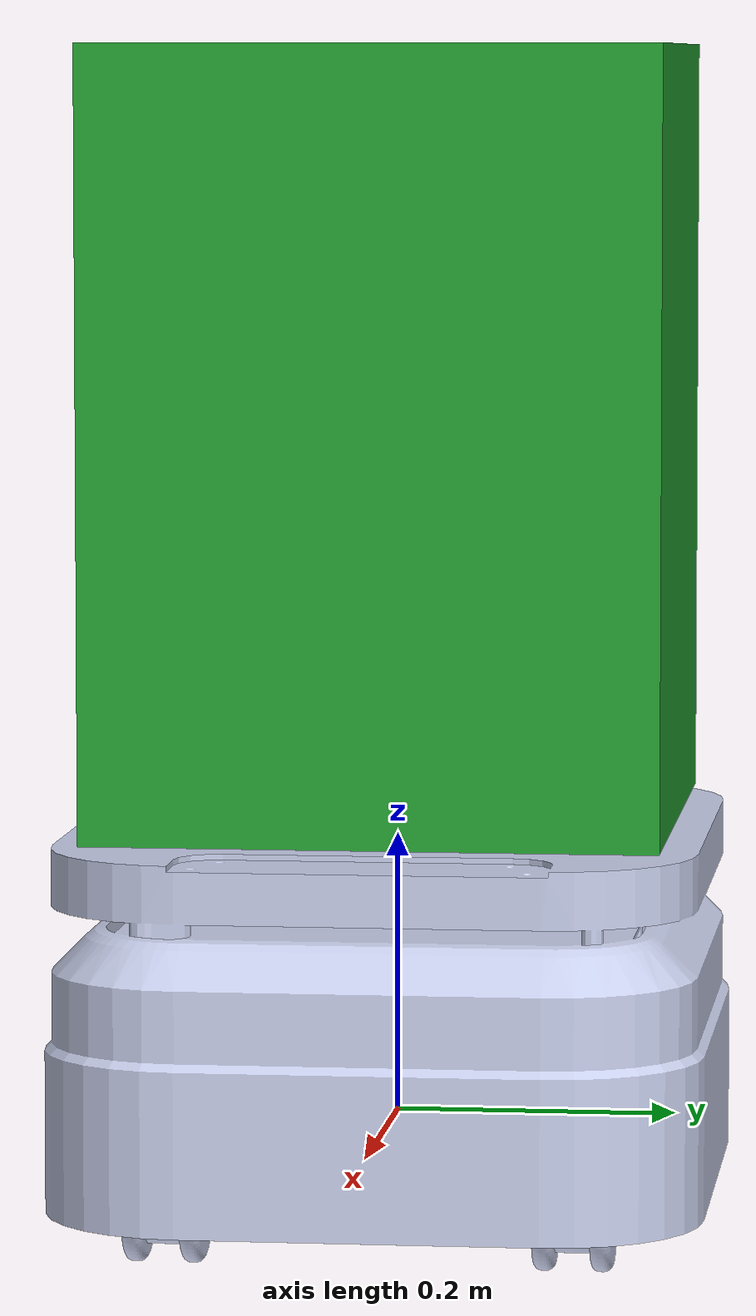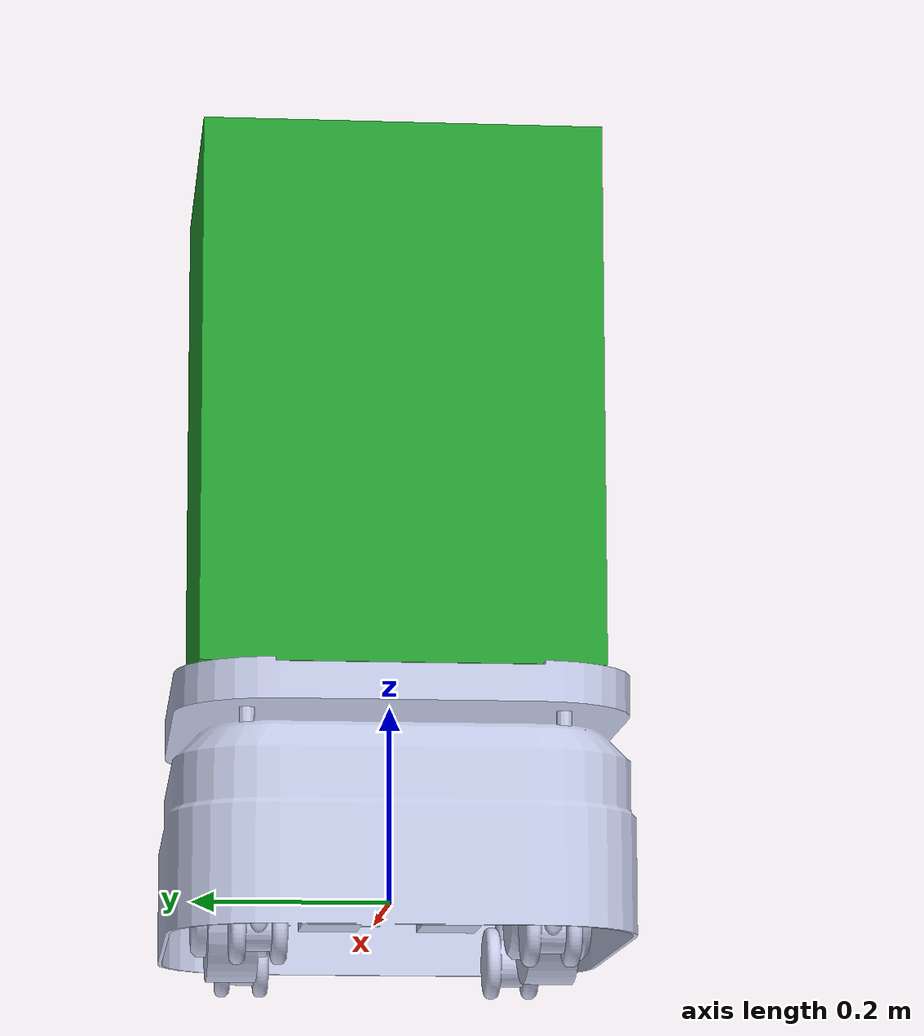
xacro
<?xml version="1.0"?>
<robot xmlns:xacro="http://ros.org/wiki/xacro" name="autoxing">
  <xacro:include filename="$(find autoxing)/urdf/autoxing_with_base.urdf" />

   <xacro:macro name="diff_controller_plugin_gazebo" params="prefix left_wheel_joint right_wheel_joint ">
    <gazebo>
      <plugin name="diff_drive_controller" filename="libgazebo_ros_diff_drive.so">
        <legacyMode>false</legacyMode>
        <alwaysOn>true</alwaysOn>
        <updateRate>1000.0</updateRate>
        <leftJoint>${left_wheel_joint}</leftJoint>
        <rightJoint>${right_wheel_joint}</rightJoint>
        <wheelSeparation>0.32</wheelSeparation>
        <wheelDiameter>0.16</wheelDiameter>
        <wheelTorque>10</wheelTorque>
        <publishTf>1</publishTf>
        <odometryFrame>map</odometryFrame>
        <commandTopic>mobile_base_controller/cmd_vel</commandTopic>
        <odometryTopic>mobile_base_controller/odom</odometryTopic>
        <robotBaseFrame>chassis</robotBaseFrame>
        <wheelAcceleration>2.0</wheelAcceleration>
        <publishWheelJointState>true</publishWheelJointState>
        <publishWheelTF>false</publishWheelTF>
        <odometrySource>odom</odometrySource>
        <rosDebugLevel>Debug</rosDebugLevel>
      </plugin>
    </gazebo>
  </xacro:macro>

    <gazebo reference="wheel_left">
      <mu1 value="200"/>
      <mu2 value="200"/>
      <kp value="10000000.0"/>
      <kd value="1.0"/>
      <minDepth>0.01</minDepth>
    </gazebo>

    <gazebo reference="wheel_right">
      <mu1 value="200"/>
      <mu2 value="200"/>
      <kp value="10000000.0"/>
      <kd value="1.0"/>
      <minDepth>0.01</minDepth>
    </gazebo>

  <xacro:macro name="p3d_base_controller" params="prefix">
    <gazebo>
      <plugin name="p3d_base_controller" filename="libgazebo_ros_p3d.so">
        <alwaysOn>true</alwaysOn>
        <updateRate>50.0</updateRate>
        <bodyName>chassis</bodyName>
        <topicName>base_pose_ground_truth</topicName>
        <gaussianNoise>0.01</gaussianNoise>
        <frameName>map</frameName>
        <xyzOffsets>0 0 0</xyzOffsets>
        <rpyOffsets>0 0 0</rpyOffsets>
      </plugin>
    </gazebo>
  </xacro:macro>
  <xacro:macro name="mir_wheel_transmission" params="prefix locationprefix">
    <transmission name="${prefix}${locationprefix}_wheel_trans">
      <type>transmission_interface/SimpleTransmission</type>
      <joint name="${prefix}${locationprefix}_wheel_joint">
        <hardwareInterface>hardware_interface/VelocityJointInterface</hardwareInterface>
      </joint>
      <actuator name="${prefix}${locationprefix}_wheel_motor">
        <hardwareInterface>hardware_interface/VelocityJointInterface</hardwareInterface>
        <mechanicalReduction>1</mechanicalReduction>
      </actuator>
    </transmission>
  </xacro:macro>

  <xacro:macro name="mir_wheel_transmissions" params="prefix">
    <xacro:mir_wheel_transmission prefix="${prefix}" locationprefix="left"/>
    <xacro:mir_wheel_transmission prefix="${prefix}" locationprefix="right"/>
  </xacro:macro>

  <xacro:macro name="controller_plugin_gazebo" params="robot_namespace">
    <gazebo>
      <plugin name="gazebo_ros_control" filename="libgazebo_ros_control.so">
        <xacro:unless value="${robot_namespace == ''}">
          <robotNamespace>${robot_namespace}</robotNamespace>
        </xacro:unless>
        <controlPeriod>0.001</controlPeriod>
        <legacyModeNS>false</legacyModeNS>
      </plugin>
    </gazebo>
  </xacro:macro>
</robot>

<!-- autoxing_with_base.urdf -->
<robot
  name="autoxing">
   <link
    name="Basefoot_link">

  </link>

  <link
    name="chassis">
    <inertial>
      <origin
        xyz="0.000149481705181087 -0.000120539934038988 0.152123091903942"
        rpy="0 0 0" />
      <mass
        value="40.8730395253421" />
      <inertia
        ixx="0.214418008302521"
        ixy="0.0"
        ixz="-0.0"
        iyy="0.258151038948936"
        iyz="0.0"
        izz="0.450008991346858" />
    </inertial>
    <visual>
      <origin
        xyz="0 0 0"
        rpy="0 0 0" />
      <geometry>
        <mesh
          filename="package://autoxing/meshes/base_link.STL" />
      </geometry>
      <material
        name="">
        <color
          rgba="0.792156862745098 0.819607843137255 0.933333333333333 1" />
      </material>
    </visual>
    <collision>
      <origin
        xyz="0 0 0"
        rpy="0 0 0" />
      <geometry>
        <mesh
          filename="package://autoxing/meshes/base_link.STL" />
      </geometry>
    </collision>
  </link>

  <joint
    name="base_link_it"
    type="fixed">
    <origin
      xyz="0 0 0"
      rpy="0 0 0" />
    <parent
      link="Basefoot_link" />
    <child
      link="chassis" />
    <axis
      xyz="0 0 0" />
  </joint>

  <link name="struct">
  	<visual>
  	<geometry>
  		<box size="0.4 0.4 0.549077"/>
  	</geometry>
  	<material name="green"/>
  	</visual>
  	 <collision>
      <origin
        xyz="0 0 0"
        rpy="0 0 0" />
      <geometry>
       <box size="0.4 0.4 0.549077"/>
      </geometry>
    </collision>
  </link>
  <joint name="struct_joint" type="fixed">
  	<origin
      xyz="0.00671416680612401 0.00186793926091428 0.488953 "
      rpy="0 0 0" />
  	<parent link="chassis"/>
  	<child link="struct"/>
  </joint>

  <link
    name="wheel_left">
    <inertial>
      <origin
        xyz="-1.38777878078145E-16 -7.97972798949331E-17 0.0399999999999999"
        rpy="0 0 0" />
      <mass
        value="1.28203160205244" />
      <inertia
        ixx="0.00231577757345468"
        ixy="0"
        ixz="0"
        iyy="0.00231577757345468"
        iyz="0"
        izz="0.00362433959821745" />
    </inertial>
    <visual>
      <origin
        xyz="0 0 0"
        rpy="0 0 0" />
      <geometry>
        <mesh
          filename="package://autoxing/meshes/wheel_left.STL " />
      </geometry>
      <material
        name="">
        <color
          rgba="0.792156862745098 0.819607843137255 0.933333333333333 1" />
      </material>
    </visual>
    <collision>
      <origin
        xyz="0 0 0"
        rpy="0 0 0" />
      <geometry>
	<cylinder radius="0.08" length="0.05"/>
      </geometry>
    </collision>
  </link>
  <joint
    name="wheel_left_joint"
    type="continuous">
    <origin
      xyz="0 0.120461283375568 0"
      rpy="-1.5707963267949 0 0" />
    <parent
      link="chassis" />
    <child
      link="wheel_left" />
    <axis
      xyz="0 0 1" />
  </joint>
  <link
    name="wheel_right">
    <inertial>
      <origin
        xyz="-1.38777878078145E-17 1.04083408558608E-17 0.0399999999999999"
        rpy="0 0 0" />
      <mass
        value="1.28203160205244" />
      <inertia
        ixx="0.00231577757345468"
        ixy="0"
        ixz="0"
        iyy="0.00231577757345468"
        iyz="0"
        izz="0.00362433959821745" />
    </inertial>
    <visual>
      <origin
        xyz="0 0 0"
        rpy="0 0 0" />
      <geometry>
        <mesh
          filename="package://autoxing/meshes/wheel_right.STL" />
      </geometry>
      <material
        name="">
        <color
          rgba="0.792156862745098 0.819607843137255 0.933333333333333 1" />
      </material>
    </visual>
    <collision>
      <origin
        xyz="0 0 0"
        rpy="0 0 0" />
      <geometry>

          <cylinder radius="0.08" length="0.05"/>
      </geometry>
    </collision>
  </link>
  <joint
    name="wheel_right_joint"
    type="continuous">
    <origin
      xyz="0 -0.120461283375569 0"
      rpy="1.5707963267949 0 0" />
    <parent
      link="chassis" />
    <child
      link="wheel_right" />
    <axis
      xyz="0 0 -1" />
  </joint>
  <link
    name="casterhub_front_left">
    <inertial>
      <origin
        xyz="0.00631384572851573 -0.00939402891827468 -7.51390670640402E-05"
        rpy="0 0 0" />
      <mass
        value="0.0507301916211751" />
      <inertia
        ixx="2.13076622334858E-05"
        ixy="-4.77213305526971E-12"
        ixz="-2.15459256741868E-07"
        iyy="2.12936580660824E-05"
        iyz="-3.18977689924232E-11"
        izz="9.21167172411273E-06" />
    </inertial>
    <visual>
      <origin
        xyz="0 0 0"
        rpy="0 0 0" />
      <geometry>
        <mesh
          filename="package://autoxing/meshes/casterhub_front_left.STL" />
      </geometry>
      <material
        name="">
        <color
          rgba="0.792156862745098 0.819607843137255 0.933333333333333 1" />
      </material>
    </visual>
    <collision>
      <origin
        xyz="0 0 0"
        rpy="0 0 0" />
      <geometry>
        <mesh
          filename="package://autoxing/meshes/casterhub_front_left.STL" />
      </geometry>
    </collision>
  </link>
  <joint
    name="casterhub_front_left_joint"
    type="continuous">
    <origin
      xyz="0.191588642505787 0.15140857130743 0.00300000000000051"
      rpy="0 0 0" />
    <parent
      link="chassis" />
    <child
      link="casterhub_front_left" />
    <axis
      xyz="0 0 1" />
       <dynamics damping="0.01" friction="0.0" />
  </joint>
  <link
    name="wheel_lf">
    <inertial>
      <origin
        xyz="2.77555756156289E-17 3.46944695195361E-17 0.0275000000000001"
        rpy="0 0 0" />
      <mass
        value="1.17460228082973" />
      <inertia
        ixx="0.000104635302988195"
        ixy="0"
        ixz="0"
        iyy="0.000104635302988195"
        iyz="0"
        izz="9.93225317269919E-05" />
    </inertial>
    <visual>
      <origin
        xyz="0 0 0"
        rpy="0 0 0" />
      <geometry>
        <mesh
          filename="package://autoxing/meshes/wheel_lf.STL" />
      </geometry>
      <material
        name="">
        <color
          rgba="0.792156862745098 0.819607843137255 0.933333333333333 1" />
      </material>
    </visual>
    <collision>
      <origin
        xyz="0 0 0"
        rpy="0 0 0" />
      <geometry>
        <cylinder radius="0.0375" length="0.055" />
      </geometry>
    </collision>
  </link>
  <joint
    name="wheel_lf_joint"
    type="continuous">
    <origin
      xyz="-0.0185912035639785 -0.036894016223973 -0.0450000000000003"
      rpy="-1.5707963267949 0 0" />
    <parent
      link="casterhub_front_left" />
    <child
      link="wheel_lf" />
    <axis
      xyz="0 0 -1" />
  </joint>
  <link
    name="casterhub_front_right">
    <inertial>
      <origin
        xyz="0.00631384572851623 0.00939400352967251 -7.51390670643212E-05"
        rpy="0 0 0" />
      <mass
        value="0.0507301916211753" />
      <inertia
        ixx="2.13076622334862E-05"
        ixy="0"
        ixz="0"
        iyy="2.12936580660827E-05"
        iyz="0"
        izz="9.21167172411275E-06" />
    </inertial>
    <visual>
      <origin
        xyz="0 0 0"
        rpy="0 0 0" />
      <geometry>
        <mesh
          filename="package://autoxing/meshes/casterhub_front_right.STL" />
      </geometry>
      <material
        name="">
        <color
          rgba="0.792156862745098 0.819607843137255 0.933333333333333 1" />
      </material>
    </visual>
    <collision>
      <origin
        xyz="0 0 0"
        rpy="0 0 0" />
      <geometry>
        <mesh
          filename="package://autoxing/meshes/casterhub_front_right.STL" />
      </geometry>
    </collision>
  </link>
  <joint
    name="casterhub_front_right_joint"
    type="continuous">
    <origin
      xyz="0.191588642505786 -0.151408571307431 0.00300000000000041"
      rpy="0 0 0" />
    <parent
      link="chassis" />
    <child
      link="casterhub_front_right" />
    <axis
      xyz="0 0 1" />
       <dynamics damping="0.01" friction="0.0" />
  </joint>
  <link
    name="wheel_rf">
    <inertial>
      <origin
        xyz="-5.55111512312578E-17 -2.77555756156289E-17 0.0275"
        rpy="0 0 0" />
      <mass
        value="1.17460228082973" />
      <inertia
        ixx="0.000104635302988195"
        ixy="0"
        ixz="0"
        iyy="0.000104635302988195"
        iyz="0"
        izz="9.9322531726992E-05" />
    </inertial>
    <visual>
      <origin
        xyz="0 0 0"
        rpy="0 0 0" />
      <geometry>
        <mesh
          filename="package://autoxing/meshes/wheel_rf.STL" />
      </geometry>
      <material
        name="">
        <color
          rgba="0.792156862745098 0.819607843137255 0.933333333333333 1" />
      </material>
    </visual>
    <collision>
      <origin
        xyz="0 0 0"
        rpy="0 0 0" />
      <geometry>
        <cylinder radius="0.0375" length="0.055" />
      </geometry>
    </collision>
  </link>
  <joint
    name="wheel_rf_joint"
    type="continuous">
    <origin
      xyz="-0.0185912035639783 0.0368940162239737 -0.0450000000000001"
      rpy="1.5707963267949 0 0" />
    <parent
      link="casterhub_front_right" />
    <child
      link="wheel_rf" />
    <axis
      xyz="0 0 1" />
  </joint>
  <link
    name="casterhub_back_left">
    <inertial>
      <origin
        xyz="-0.00631384572595789 -0.00939400352571207 -7.51390691109341E-05"
        rpy="0 0 0" />
      <mass
        value="0.0507301916238285" />
      <inertia
        ixx="2.13076622385357E-05"
        ixy="0"
        ixz="0"
        iyy="2.12936580714444E-05"
        iyz="0"
        izz="9.21167172497116E-06" />
    </inertial>
    <visual>
      <origin
        xyz="0 0 0"
        rpy="0 0 0" />
      <geometry>
        <mesh
          filename="package://autoxing/meshes/casterhub_back_left.STL" />
      </geometry>
      <material
        name="">
        <color
          rgba="0.792156862745098 0.819607843137255 0.933333333333333 1" />
      </material>
    </visual>
    <collision>
      <origin
        xyz="0 0 0"
        rpy="0 0 0" />
      <geometry>
        <mesh
          filename="package://autoxing/meshes/casterhub_back_left.STL" />
      </geometry>
    </collision>
  </link>
  <joint
    name="casterhub_back_left_joint"
    type="continuous">
    <origin
      xyz="-0.191588642505784 0.15140857130743 0.00300000000000039"
      rpy="0 0 0" />
    <parent
      link="chassis" />
    <child
      link="casterhub_back_left" />
    <axis
      xyz="0 0 1" />
       <dynamics damping="0.01" friction="0.0" />
  </joint>
  <link
    name="wheel_lb">
    <inertial>
      <origin
        xyz="5.55111512312578E-17 2.42861286636753E-17 0.0275"
        rpy="0 0 0" />
      <mass
        value="1.17460228082973" />
      <inertia
        ixx="0.000104635302988195"
        ixy="0"
        ixz="0"
        iyy="0.000104635302988195"
        iyz="0"
        izz="9.9322531726992E-05" />
    </inertial>
    <visual>
      <origin
        xyz="0 0 0"
        rpy="0 0 0" />
      <geometry>
        <mesh
          filename="package://autoxing/meshes/wheel_lb.STL" />
      </geometry>
      <material
        name="">
        <color
          rgba="0.792156862745098 0.819607843137255 0.933333333333333 1" />
      </material>
    </visual>
    <collision>
      <origin
        xyz="0 0 0"
        rpy="0 0 0" />
      <geometry>
       <cylinder radius="0.0375" length="0.055" />
      </geometry>
    </collision>
  </link>
  <joint
    name="wheel_lb_joint"
    type="continuous">
    <origin
      xyz="0.0185912035639781 -0.0368940162239735 -0.0450000000000004"
      rpy="-1.5707963267949 0 0" />
    <parent
      link="casterhub_back_left" />
    <child
      link="wheel_lb" />
    <axis
      xyz="0 0 -1" />
  </joint>
  <link
    name="casterhub_back_right">
    <inertial>
      <origin
        xyz="-0.00631384572595783 0.00939402892223568 -7.51390691110208E-05"
        rpy="0 0 0" />
      <mass
        value="0.0507301916238286" />
      <inertia
        ixx="2.1307662238536E-05"
        ixy="-4.77268550032231E-12"
        ixz="2.15459261528391E-07"
        iyy="2.12936580714447E-05"
        iyz="3.19056366466023E-11"
        izz="9.21167172497116E-06" />
    </inertial>
    <visual>
      <origin
        xyz="0 0 0"
        rpy="0 0 0" />
      <geometry>
        <mesh
          filename="package://autoxing/meshes/casterhub_back_right.STL" />
      </geometry>
      <material
        name="">
        <color
          rgba="0.792156862745098 0.819607843137255 0.933333333333333 1" />
      </material>
    </visual>
    <collision>
      <origin
        xyz="0 0 0"
        rpy="0 0 0" />
      <geometry>
        <mesh
          filename="package://autoxing/meshes/casterhub_back_right.STL" />
      </geometry>
    </collision>
  </link>
  <joint
    name="casterhub_back_right_joint"
    type="continuous">
    <origin
      xyz="-0.191588642505784 -0.151408571307431 0.00300000000000018"
      rpy="0 0 0" />
    <parent
      link="chassis" />
    <child
      link="casterhub_back_right" />
    <axis
      xyz="0 0 1" />
       <dynamics damping="0.01" friction="0.0" />
  </joint>
  <link
    name="wheel_rb">
    <inertial>
      <origin
        xyz="-3.33066907387547E-16 2.84494650060196E-16 0.0275"
        rpy="0 0 0" />
      <mass
        value="1.17460228082973" />
      <inertia
        ixx="0.000104635302988195"
        ixy="0"
        ixz="0"
        iyy="0.000104635302988195"
        iyz="0"
        izz="9.93225317269922E-05" />
    </inertial>
    <visual>
      <origin
        xyz="0 0 0"
        rpy="0 0 0" />
      <geometry>
        <mesh
          filename="package://autoxing/meshes/wheel_rb.STL" />
      </geometry>
      <material
        name="">
        <color
          rgba="0.792156862745098 0.819607843137255 0.933333333333333 1" />
      </material>
    </visual>
    <collision>
      <origin
        xyz="0 0 0"
        rpy="0 0 0" />
      <geometry>
       <cylinder radius="0.0375" length="0.055" />
      </geometry>
    </collision>
  </link>
  <joint
    name="wheel_rb_joint"
    type="continuous">
    <origin
      xyz="0.0185912035639779 0.0368940162239737 -0.0450000000000001"
      rpy="1.5707963267949 0 0" />
    <parent
      link="casterhub_back_right" />
    <child
      link="wheel_rb" />
    <axis
      xyz="0 0 1" />
  </joint>
  <link
    name="lidar">
    <inertial>
      <origin
        xyz="-2.77555756156289E-17 0 -0.005"
        rpy="0 0 0" />
      <mass
        value="0.000785398163397448" />
      <inertia
        ixx="1.14537232162128E-08"
        ixy="0"
        ixz="0"
        iyy="1.14537232162128E-08"
        iyz="0"
        izz="9.8174770424681E-09" />
    </inertial>
    <visual>
      <origin
        xyz="0 0 0"
        rpy="0 0 0" />
      <geometry>
        <mesh
          filename="package://autoxing/meshes/lidar.STL" />
      </geometry>
      <material
        name="">
        <color
          rgba="0.792156862745098 0.819607843137255 0.933333333333333 1" />
      </material>
    </visual>
    <collision>
      <origin
        xyz="0 0 0"
        rpy="0 0 0" />
      <geometry>
        <mesh
          filename="package://autoxing/meshes/lidar.STL" />
      </geometry>
    </collision>
  </link>
  <joint
    name="lidar_joint"
    type="fixed">
    <origin
      xyz="0.00671416680612409 0.00186793926091405 0.158"
      rpy="0 0 0" />
    <parent
      link="chassis" />
    <child
      link="lidar" />
    <axis
      xyz="0 0 0" />
  </joint>
    <!--imu_sensor-->
     <link
    name="imu_link">
    <inertial>
      <origin
        xyz="-2.77555756156289E-17 0 -0.005"
        rpy="0 0 0" />
      <mass
        value="0.000785398163397448" />
      <inertia
        ixx="1.14537232162128E-08"
        ixy="0"
        ixz="-3.39253103278279E-24"
        iyy="1.14537232162128E-08"
        iyz="-1.03950157856018E-23"
        izz="9.8174770424681E-09" />
    </inertial>
    <visual>
      <origin
        xyz="0 0 0"
        rpy="0 0 0" />
      <geometry>
        <mesh
          filename="package://autoxing/meshes/lidar.STL" />
      </geometry>
      <material
        name="">
        <color
          rgba="0.792156862745098 0.819607843137255 0.933333333333333 1" />
      </material>
    </visual>
    <collision>
      <origin
        xyz="0 0 0"
        rpy="0 0 0" />
      <geometry>
        <mesh
          filename="package://autoxing/meshes/lidar.STL" />
      </geometry>
    </collision>
  </link>
  <joint
    name="imu_joint"
    type="fixed">
    <origin
      xyz="0.00671416680612409 0.00186793926091405 0.1"
      rpy="0 0 0" />
    <parent
      link="chassis" />
    <child
      link="imu_link" />
    <axis
      xyz="0 0 0" />
  </joint>
   <gazebo reference="chassis">
  	<material>Gazebo/Turquoise </material>
  </gazebo>
  <gazebo reference="wheel_left">
  	<mu1>1.0</mu1>
  	<mu2>1.0</mu2>
  	<kp>10000000</kp>
  	<kd>1.0</kd>
  	<material>Gazebo/FlatBlack</material>
  </gazebo>
   <gazebo reference="wheel_right">
  	<mu1>1.0</mu1>
  	<mu2>1.0</mu2>
  	<kp>10000000</kp>
  	<kd>1.0</kd>
  	<material>Gazebo/FlatBlack</material>
  </gazebo>
   <gazebo reference="lidar">
  	<material>Gazebo/Green</material>
  </gazebo>
   <gazebo reference="wheel_lf">
  	<mu1>1.0</mu1>
  	<mu2>1.0</mu2>
  	<kp>10000000</kp>
  	<kd>1.0</kd>
  	<material>Gazebo/FlatBlack</material>
  </gazebo>
   <gazebo reference="wheel_rf">
  	<mu1>1.0</mu1>
  	<mu2>1.0</mu2>
  	<kp>10000000</kp>
  	<kd>1.0</kd>
  	<material>Gazebo/FlatBlack</material>
  </gazebo>
   <gazebo reference="wheel_lb">
  	<mu1>1.0</mu1>
  	<mu2>1.0</mu2>
  	<kp>10000000</kp>
  	<kd>1.0</kd>
  	<material>Gazebo/FlatBlack</material>
  </gazebo>
   <gazebo reference="wheel_rb">
    <mu1>1.0</mu1>
  	<mu2>1.0</mu2>
  	<kp>10000000</kp>
  	<kd>1.0</kd>
  	<material>Gazebo/FlatBlack</material>
  </gazebo>
   <!-- adding diff drive -->
   <gazebo>
   <plugin name="differential_drive_controller" filename="libgazebo_ros_diff_drive.so">

    <!-- Plugin update rate in Hz -->
    <updateRate>50</updateRate>

    <!-- Name of left joint, defaults to `left_joint` -->
    <leftJoint>wheel_left_joint</leftJoint>

    <!-- Name of right joint, defaults to `right_joint` -->
    <rightJoint>wheel_right_joint</rightJoint>

    <!-- The distance from the center of one wheel to the other, in meters, defaults to 0.34 m -->
    <wheelSeparation>0.32</wheelSeparation>

    <!-- Diameter of the wheels, in meters, defaults to 0.15 m -->
    <wheelDiameter>0.16</wheelDiameter>

    <!-- Wheel acceleration, in rad/s^2, defaults to 0.0 rad/s^2 -->
    <wheelAcceleration>1.2</wheelAcceleration>

    <!-- Maximum torque which the wheels can produce, in Nm, defaults to 5 Nm -->
    <wheelTorque>5</wheelTorque>

    <!-- Topic to receive geometry_msgs/Twist message commands, defaults to `cmd_vel` -->
    <commandTopic>cmd_vel</commandTopic>

    <!-- Topic to publish nav_msgs/Odometry messages, defaults to `odom` -->
    <odometryTopic>odom</odometryTopic>

    <!-- Odometry frame, defaults to `odom` -->
    <odometryFrame>odom</odometryFrame>

    <!-- Robot frame to calculate odometry from, defaults to `base_footprint` -->
    <robotBaseFrame>chassis</robotBaseFrame>

    <!-- Odometry source, 0 for ENCODER, 1 for WORLD, defaults to WORLD -->
    <odometrySource>1</odometrySource>

    <!-- Set to true to publish transforms for the wheel links, defaults to false -->
    <publishWheelTF>true</publishWheelTF>

    <!-- Set to true to publish transforms for the odometry, defaults to true -->
    <publishOdom>true</publishOdom>

    <!-- Set to true to publish sensor_msgs/JointState on /joint_states for the wheel joints, defaults to false -->
    <publishWheelJointState>true</publishWheelJointState>

    <!-- Set to true to swap right and left wheels, defaults to true -->
    <legacyMode>false</legacyMode>
   </plugin>
 </gazebo>

 <!-- hokuyo -->
  <gazebo reference="lidar">
    <sensor type="ray" name="sensor">
      <pose>0 0 0 0 0 0</pose>
      <visualize>false</visualize>
      <update_rate>40</update_rate>
      <ray>
        <scan>
          <horizontal>
            <samples>720</samples>
            <resolution>1</resolution>
            <min_angle>-1.570796</min_angle>
            <max_angle>4.712388</max_angle>
          </horizontal>
        </scan>
        <range>
          <min>0.10</min>
          <max>30.0</max>
          <resolution>0.01</resolution>
        </range>
        <noise>
          <type>gaussian</type>
          <mean>0.0</mean>
          <stddev>0.01</stddev>
        </noise>
      </ray>

      <plugin name="hokuyo_node" filename="libgazebo_ros_laser.so">
        <topicName>/laser/scan</topicName>
        <frameName>lidar</frameName>
      </plugin>
    </sensor>
  </gazebo>
   <!-- imu sensor -->
     <gazebo>
    <plugin name="imu_plugin" filename="libgazebo_ros_imu.so">
      <alwaysOn>true</alwaysOn>
      <bodyName>chassis</bodyName>
      <topicName>imu</topicName>
      <serviceName>imu_service</serviceName>
      <gaussianNoise>0.0</gaussianNoise>
      <updateRate>1.0</updateRate>
    </plugin>
  </gazebo>
   <gazebo reference="imu_link">
    <gravity>true</gravity>
    <sensor name="imu_sensor" type="imu">
      <always_on>true</always_on>
      <update_rate>100</update_rate>
      <visualize>true</visualize>
      <topic>__default_topic__</topic>
      <plugin filename="libgazebo_ros_imu_sensor.so" name="imu_plugin">
        <topicName>imu</topicName>
        <bodyName>imu_link</bodyName>
        <updateRateHZ>10.0</updateRateHZ>
        <gaussianNoise>0.0</gaussianNoise>
        <xyzOffset>0 0 0</xyzOffset>
        <rpyOffset>0 0 0</rpyOffset>
        <frameName>imu_link</frameName>
        <initialOrientationAsReference>false</initialOrientationAsReference>
      </plugin>
      <pose>0 0 0 0 0 0</pose>
    </sensor>
  </gazebo>
</robot>
